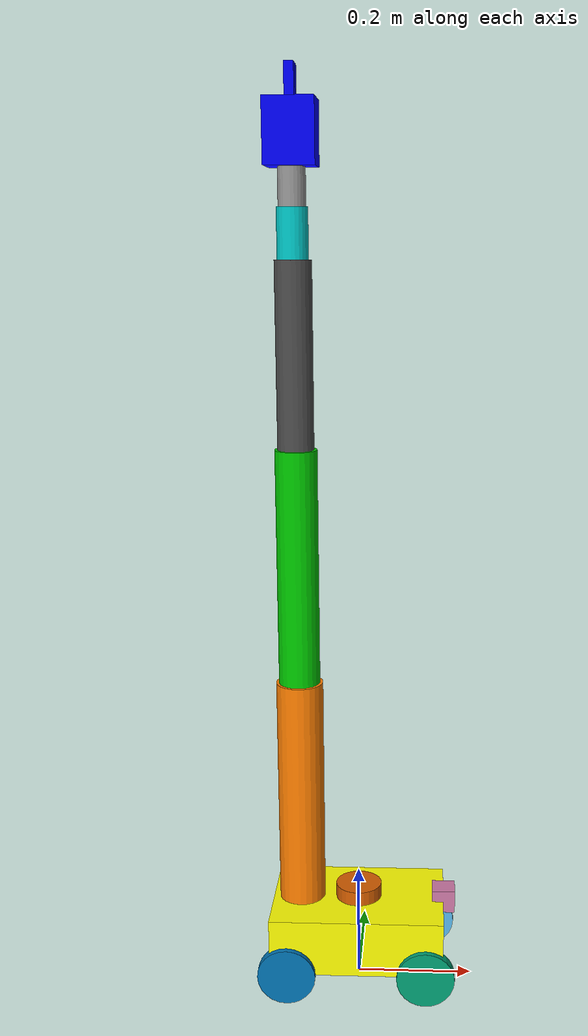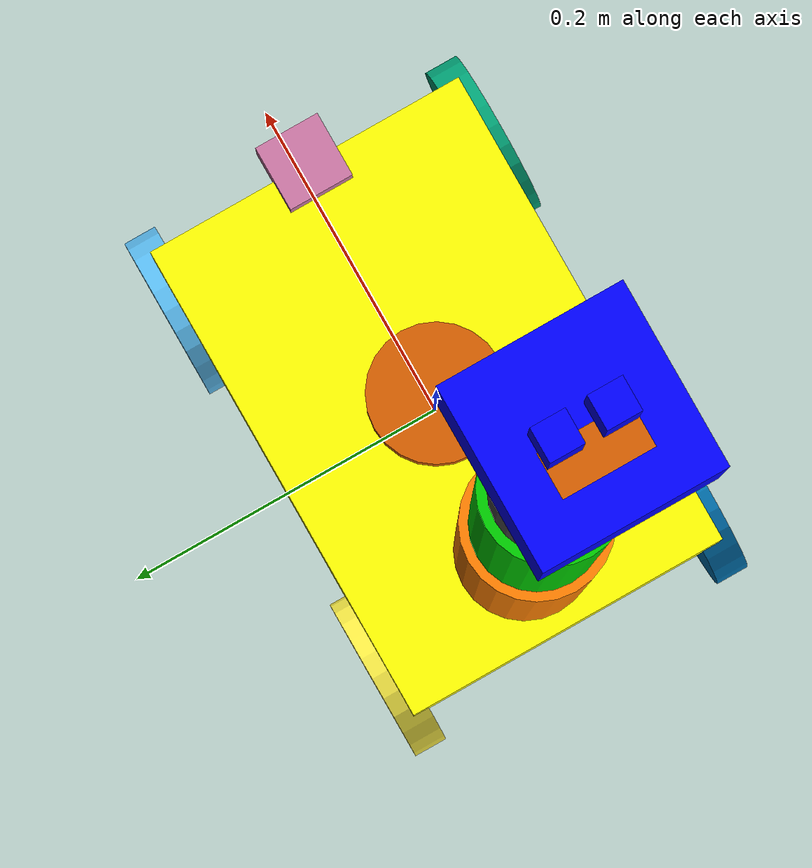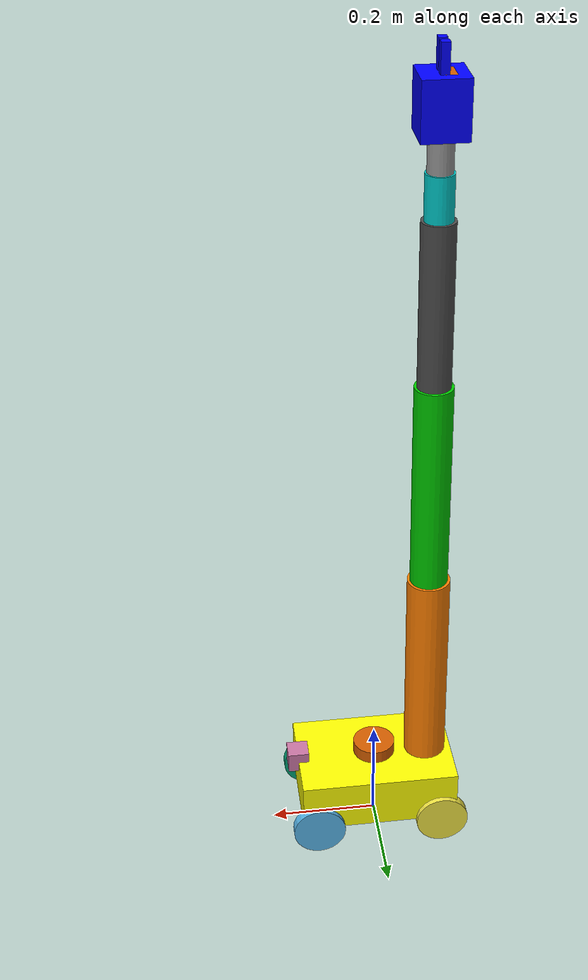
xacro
<?xml version="1.0"?>
<robot name="nexus_with_arm" xmlns:xacro="http://www.ros.org/wiki/xacro">

    <!-- Include parts -->
    <xacro:include filename="$(find fleet_description)/urdf/car.xacro" />
    <xacro:include filename="$(find fleet_description)/urdf/arm.xacro" />

    <!-- Spawn car -->
    <xacro:car_robot prefix="car_" />

    <!-- Spawn arm -->
    <xacro:arm_robot prefix="arm_" parent_link="car_base_link" />

    <!-- ROS2 CONTROL -->
    <ros2_control name="GazeboSimSystem" type="system">
        <hardware>
            <plugin>gz_ros2_control/GazeboSimSystem</plugin>
        </hardware>
        <joint name="arm_forearm_joint">
            <command_interface name="position" />
            <state_interface name="position" />
            <state_interface name="velocity" />
        </joint>

        <joint name="arm_wrist_pitch_joint">
            <command_interface name="position" />
            <state_interface name="position" />
            <state_interface name="velocity" />
        </joint>

        <joint name="arm_wrist_roll_joint">
            <command_interface name="position" />
            <state_interface name="position" />
            <state_interface name="velocity" />
        </joint>

        <joint name="arm_shoulder_joint">
            <command_interface name="position" />
            <state_interface name="position" />
            <state_interface name="velocity" />
        </joint>

        <joint name="arm_elbow_joint">
            <command_interface name="position" />
            <state_interface name="position" />
            <state_interface name="velocity" />
        </joint>

        <joint name="arm_left_finger_joint">
            <command_interface name="position" />
            <state_interface name="position" />
            <state_interface name="velocity" />
        </joint>

        <joint name="arm_right_finger_joint">
            <command_interface name="position" />
            <state_interface name="position" />
            <state_interface name="velocity" />
        </joint>

        <joint name="car_front_left_wheel_joint">
            <command_interface name="velocity" />
            <state_interface name="position" />
            <state_interface name="velocity" />
        </joint>

        <joint name="car_front_right_wheel_joint">
            <command_interface name="velocity" />
            <state_interface name="position" />
            <state_interface name="velocity" />
        </joint>

        <joint name="car_rear_left_wheel_joint">
            <command_interface name="velocity" />
            <state_interface name="position" />
            <state_interface name="velocity" />
        </joint>

        <joint name="car_rear_right_wheel_joint">
            <command_interface name="velocity" />
            <state_interface name="position" />
            <state_interface name="velocity" />
        </joint>

    </ros2_control>

    <!-- REQUIRED FOR GAZEBO HARMONIC -->
    <gazebo>
        <plugin filename="libgz_ros2_control-system.so"
            name="gz_ros2_control::GazeboSimROS2ControlPlugin">
            <parameters>
                /home/madhu/ros2_nexus_fleet_ws/install/fleet_description/share/fleet_description/config/controllers.yaml
            </parameters>
        </plugin>
    </gazebo>

    <gazebo reference="car_lidar_link">
        <sensor name="gpu_lidar" type="gpu_lidar">
            <update_rate>10</update_rate>
            <topic>scan</topic>
            <gz_frame_id>car_lidar_link</gz_frame_id>
            <frame_id>car_lidar_link</frame_id>
            <lidar>
                <scan>
                    <horizontal>
                        <samples>180</samples>
                        <resolution>1</resolution>
                        <min_angle>-3.14156</min_angle>
                        <max_angle>3.14156</max_angle>
                    </horizontal>
                </scan>
                <range>
                    <min>0.05</min>
                    <max>10.0</max>
                    <resolution>0.01</resolution>
                </range>
                <noise>
                    <type>gaussian</type>
                    <mean>0.0</mean>
                    <stddev>0.01</stddev>
                </noise>
            </lidar>
            <always_on>1</always_on>
            <visualize>true</visualize>
        </sensor>
    </gazebo>
    <gazebo reference="car_camera_link">
        <sensor name="camera" type="camera">
            <update_rate>30</update_rate>
            <topic>camera/image</topic>
            <camera>
                <horizontal_fov>1.396</horizontal_fov>
                <image>
                    <width>640</width>
                    <height>480</height>
                    <format>R8G8B8</format>
                </image>
            </camera>
        </sensor>
    </gazebo>
    <gazebo>
        <plugin
            filename="gz-sim-sensors-system"
            name="gz::sim::systems::Sensors">
            <render_engine>ogre2</render_engine>
        </plugin>
    </gazebo>
</robot>

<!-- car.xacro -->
<robot xmlns:xacro="http://www.ros.org/wiki/xacro">

    <xacro:macro name="car_robot" params="prefix">

        <!-- BASE -->
        <link name="${prefix}base_link">
            <visual>
                <origin xyz="0 0 0.1" />
                <geometry>
                    <box size="0.3 0.2 0.1" />
                </geometry>
                <material name="red">
                    <color rgba="1 1 0 1" />
                </material>
            </visual>
            <collision>
                <origin xyz="0 0 0.1" />
                <geometry>
                    <box size="0.3 0.2 0.1" />
                </geometry>
            </collision>
            <inertial>
                <mass value="30.0" />
                <inertia
                    ixx="0.18"
                    iyy="0.25"
                    izz="0.30"
                    ixy="0"
                    ixz="0"
                    iyz="0" />
            </inertial>
            <gazebo>
                <mu1>2.0</mu1>
                <mu2>2.0</mu2>
                <kp>1000000.0</kp>
                <kd>1.0</kd>
            </gazebo>
            <gazebo>
                <gravity>false</gravity>
            </gazebo>
        </link>

        <!-- ================= WHEEL MACRO ================= -->
        <xacro:macro name="wheel" params="name x y">
            <joint name="${prefix}${name}_joint" type="continuous">
                <parent link="${prefix}base_link" />
                <child link="${prefix}${name}" />
                <origin xyz="${x} ${y} 0.05" />
                <axis xyz="0 1 0" />
            </joint>

            <link name="${prefix}${name}">
                <visual>
                    <origin rpy="1.5708 0 0" />
                    <geometry>
                        <cylinder radius="0.05" length="0.02" />
                    </geometry>
                </visual>
                <collision>
                    <origin rpy="1.5708 0 0" />
                    <geometry>
                        <cylinder radius="0.05" length="0.02" />
                    </geometry>
                </collision>
                <inertial>
                    <mass value="0.5" />
                    <inertia ixx="0.001" iyy="0.001" izz="0.001"
                        ixy="0" ixz="0" iyz="0" />
                </inertial>
                <gazebo>
                    <mu1>2.0</mu1>
                    <mu2>2.0</mu2>
                </gazebo>
            </link>
        </xacro:macro>

        <!-- ================= 4 WHEELS ================= -->

        <!-- Front Left -->
        <xacro:wheel name="front_left_wheel"  x="0.12"  y="0.10"/>

        <!-- Front Right -->
        <xacro:wheel name="front_right_wheel" x="0.12"  y="-0.10"/>

        <!-- Rear Left -->
        <xacro:wheel name="rear_left_wheel"   x="-0.12" y="0.10"/>

        <!-- Rear Right -->
        <xacro:wheel name="rear_right_wheel"  x="-0.12" y="-0.10"/>

        <!-- ================= LIDAR ================= -->
        <link name="${prefix}lidar_link">
            <visual>
                <geometry>
                    <cylinder radius="0.04" length="0.05" />
                </geometry>
            </visual>
            <collision>
                <geometry>
                    <cylinder radius="0.04" length="0.05" />
                </geometry>
            </collision>
            <inertial>
                <mass value="0.3" />
                <inertia ixx="0.0005" iyy="0.0005" izz="0.0005"
                    ixy="0" ixz="0" iyz="0" />
            </inertial>
        </link>

        <joint name="${prefix}lidar_joint" type="fixed">
            <parent link="${prefix}base_link" />
            <child link="${prefix}lidar_link" />
            <origin xyz="0.0 0 0.15" />
        </joint>

        <!-- ================= CAMERA ================= -->
        <link name="${prefix}camera_link">
            <visual>
                <geometry>
                    <box size="0.04 0.04 0.04" />
                </geometry>
            </visual>
            <collision>
                <geometry>
                    <box size="0.04 0.04 0.04" />
                </geometry>
            </collision>
            <inertial>
                <mass value="0.1" />
                <inertia ixx="0.0001" iyy="0.0001" izz="0.0001"
                    ixy="0" ixz="0" iyz="0" />
            </inertial>
        </link>

        <joint name="${prefix}camera_joint" type="fixed">
            <parent link="${prefix}base_link" />
            <child link="${prefix}camera_link" />
            <origin xyz="0.15 0 0.15" />
        </joint>

    </xacro:macro>
</robot>

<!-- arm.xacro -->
<robot xmlns:xacro="http://www.ros.org/wiki/xacro">

    <xacro:macro name="arm_robot" params="prefix parent_link">

        <!-- SHOULDER -->
        <joint name="${prefix}shoulder_joint" type="revolute">
            <parent link="${parent_link}" />
            <child link="${prefix}shoulder_link" />
            <origin xyz="-0.1 0 0.15" />
            <axis xyz="0 0 1" />
            <limit lower="-3.14" upper="3.14" effort="300" velocity="1" />
            <dynamics damping="0.5" friction="0.1" />
        </joint>

        <link name="${prefix}shoulder_link">
            <visual>
                <origin xyz="0 0 0.2" />
                <geometry>
                    <cylinder length="0.4" radius="0.04" />
                </geometry>
                <material name="orange">
                    <color rgba="1.0 0.5 0.0 1.0" />
                </material>
            </visual>
            <collision>
                <origin xyz="0 0 0.2" />
                <geometry>
                    <cylinder length="0.4" radius="0.04" />
                </geometry>
            </collision>
            <inertial>
                <mass value="1.2" />
                <inertia ixx="0.03" iyy="0.03" izz="0.005"
                    ixy="0" ixz="0" iyz="0" />
            </inertial>
            <gazebo>
                <selfCollide>false</selfCollide>
            </gazebo>
        </link>

        <!-- ELBOW -->
        <joint name="${prefix}elbow_joint" type="revolute">
            <parent link="${prefix}shoulder_link" />
            <child link="${prefix}elbow_link" />
            <origin xyz="0 0 0.4" />
            <axis xyz="1 0 0" />
            <limit lower="-1.57" upper="1.57" effort="300" velocity="1" />
            <dynamics damping="0.5" friction="0.1" />
        </joint>

        <link name="${prefix}elbow_link">
            <visual>
                <origin xyz="0 0 0.2" />
                <geometry>
                    <cylinder length="0.4" radius="0.035" />
                </geometry>
                <material name="green">
                    <color rgba="0.0 0.8 0.0 1.0" />
                </material>
            </visual>
            <collision>
                <origin xyz="0 0 0.2" />
                <geometry>
                    <cylinder length="0.4" radius="0.035" />
                </geometry>
            </collision>
            <inertial>
                <mass value="0.9" />
                <inertia ixx="0.02" iyy="0.02" izz="0.004"
                    ixy="0" ixz="0" iyz="0" />
            </inertial>
            <gazebo>
                <selfCollide>false</selfCollide>
            </gazebo>
        </link>

        <!-- FOREARM -->
        <joint name="${prefix}forearm_joint" type="revolute">
            <parent link="${prefix}elbow_link" />
            <child link="${prefix}forearm_link" />
            <origin xyz="0 0 0.4" />
            <axis xyz="1 0 0" />
            <limit lower="-1.57" upper="1.57" effort="300" velocity="1" />
            <dynamics damping="0.5" friction="0.1" />
        </joint>

        <link name="${prefix}forearm_link">
            <visual>
                <origin xyz="0 0 0.15" />
                <geometry>
                    <cylinder length="0.3" radius="0.03" />
                </geometry>
                <material name="dark_grey">
                    <color rgba="0.3 0.3 0.3 1.0" />
                </material>
            </visual>
            <collision>
                <origin xyz="0 0 0.15" />
                <geometry>
                    <cylinder length="0.3" radius="0.03" />
                </geometry>
            </collision>
            <inertial>
                <mass value="0.6" />
                <inertia ixx="0.01" iyy="0.01" izz="0.003"
                    ixy="0" ixz="0" iyz="0" />
            </inertial>
            <gazebo>
                <selfCollide>false</selfCollide>
            </gazebo>
        </link>

        <!-- WRIST PITCH -->
        <joint name="${prefix}wrist_pitch_joint" type="revolute">
            <parent link="${prefix}forearm_link" />
            <child link="${prefix}wrist_pitch_link" />
            <origin xyz="0 0 0.3" />
            <axis xyz="1 0 0" />
            <limit lower="-1.57" upper="1.57" effort="100" velocity="1" />
            <dynamics damping="0.3" friction="0.05" />
        </joint>

        <link name="${prefix}wrist_pitch_link">
            <visual>
                <origin xyz="0 0 0.04" />
                <geometry>
                    <cylinder length="0.08" radius="0.025" />
                </geometry>
                <material name="cyan">
                    <color rgba="0.0 0.8 0.8 1.0" />
                </material>
            </visual>
            <collision>
                <origin xyz="0 0 0.04" />
                <geometry>
                    <cylinder length="0.08" radius="0.025" />
                </geometry>
            </collision>
            <inertial>
                <mass value="0.3" />
                <inertia ixx="0.003" iyy="0.003" izz="0.001"
                    ixy="0" ixz="0" iyz="0" />
            </inertial>
            <gazebo>
                <selfCollide>false</selfCollide>
            </gazebo>
        </link>

        <!-- WRIST ROLL -->
        <joint name="${prefix}wrist_roll_joint" type="revolute">
            <parent link="${prefix}wrist_pitch_link" />
            <child link="${prefix}wrist_roll_link" />
            <origin xyz="0 0 0.08" />
            <axis xyz="0 0 1" />
            <limit lower="-3.14" upper="3.14" effort="50" velocity="2" />
            <dynamics damping="0.3" friction="0.05" />
        </joint>

        <link name="${prefix}wrist_roll_link">
            <visual>
                <origin xyz="0 0 0.03" />
                <geometry>
                    <cylinder length="0.06" radius="0.022" />
                </geometry>
                <material name="grey">
                    <color rgba="0.6 0.6 0.6 1.0" />
                </material>
            </visual>
            <collision>
                <origin xyz="0 0 0.03" />
                <geometry>
                    <cylinder length="0.06" radius="0.022" />
                </geometry>
            </collision>
            <inertial>
                <mass value="0.25" />
                <inertia ixx="0.002" iyy="0.002" izz="0.001"
                    ixy="0" ixz="0" iyz="0" />
            </inertial>
            <gazebo>
                <selfCollide>false</selfCollide>
            </gazebo>
        </link>
        <!-- ================= GRIPPER ================= -->

        <!-- WRIST ROLL to GRIPPER BASE -->
        <joint name="${prefix}gripper_mount_joint" type="fixed">
            <parent link="${prefix}wrist_roll_link" />
            <child link="${prefix}gripper_base" />
            <origin xyz="0 0 0.06" />
        </joint>

        <link name="${prefix}gripper_base">
            <visual>
                <origin xyz="0 0 0.05" />
                <geometry>
                    <box size="0.08 0.08 0.1" />
                </geometry>
                <material name="blue">
                    <color rgba="0.0 0.0 1.0 1.0" />
                </material>
            </visual>
            <collision>
                <origin xyz="0 0 0.05" />
                <geometry>
                    <box size="0.08 0.08 0.1" />
                </geometry>
            </collision>
            <inertial>
                <origin xyz="0 0 0.05" />
                <mass value="0.4" />
                <inertia ixx="0.002" iyy="0.002" izz="0.002" ixy="0" ixz="0" iyz="0" />
            </inertial>
        </link>

        <!-- GRIPPER CAMERA -->
        <joint name="${prefix}gripper_camera_joint" type="fixed">
            <parent link="${prefix}gripper_base" />
            <child link="${prefix}gripper_camera_link" />
            <origin xyz="0 0 0.08" rpy="0 -1.57 0" />
        </joint>

        <link name="${prefix}gripper_camera_link">
            <visual>
                <geometry>
                    <box size="0.04 0.04 0.04" />
                </geometry>
            </visual>
        </link>

        <!-- LEFT FINGER -->
        <joint name="${prefix}left_finger_joint" type="prismatic">
            <parent link="${prefix}gripper_base" />
            <child link="${prefix}left_finger" />
            <origin xyz="0 0.012 0.05" />
            <axis xyz="0 1 0" />
            <limit lower="0" upper="0.025" effort="100" velocity="0.2" />
        </joint>

        <link name="${prefix}left_finger">
            <visual>
                <origin xyz="0 0 0.05" />
                <geometry>
                    <box size="0.015 0.015 0.1" />
                </geometry>
                <material name="blue">
                    <color rgba="0.0 0.0 1.0 1.0" />
                </material>
            </visual>
            <collision>
                <origin xyz="0 0 0.05" />
                <geometry>
                    <box size="0.015 0.015 0.1" />
                </geometry>
            </collision>
            <inertial>
                <origin xyz="0 0 0.05" />
                <mass value="0.05" />
                <inertia ixx="0.0002" iyy="0.0002" izz="0.0002" ixy="0" ixz="0" iyz="0" />
            </inertial>
        </link>

        <!-- RIGHT FINGER -->
        <joint name="${prefix}right_finger_joint" type="prismatic">
            <parent link="${prefix}gripper_base" />
            <child link="${prefix}right_finger" />
            <origin xyz="0 -0.012 0.05" />
            <axis xyz="0 -1 0" />
            <limit lower="0" upper="0.025" effort="100" velocity="0.2" />
        </joint>

        <link name="${prefix}right_finger">
            <visual>
                <origin xyz="0 0 0.05" />
                <geometry>
                    <box size="0.015 0.015 0.1" />
                </geometry>
                <material name="blue">
                    <color rgba="0.0 0.0 1.0 1.0" />
                </material>
            </visual>
            <collision>
                <origin xyz="0 0 0.05" />
                <geometry>
                    <box size="0.015 0.015 0.1" />
                </geometry>
            </collision>
            <inertial>
                <origin xyz="0 0 0.05" />
                <mass value="0.05" />
                <inertia ixx="0.0002" iyy="0.0002" izz="0.0002" ixy="0" ixz="0" iyz="0" />
            </inertial>
        </link>
    </xacro:macro>
</robot>
